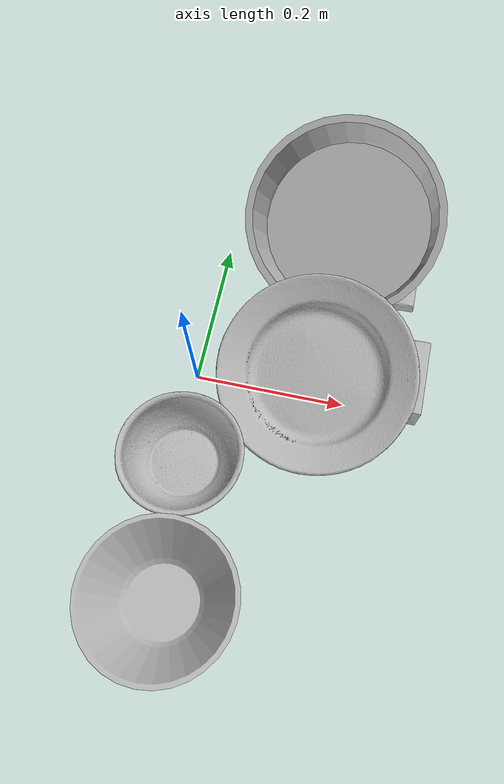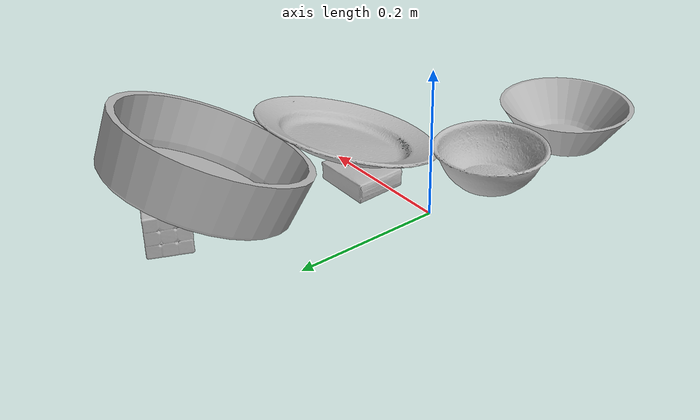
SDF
<sdf version="1.4">
  <world name="default">
    <light name="light1" type="point">
      <pose>0 0 1 0 0 0</pose>
      <diffuse>3 3 3 1</diffuse>
      <specular>3 3 3 1</specular>
    </light>
    <light name="light2" type="point">
      <pose>0 0.5 2 0 0 0</pose>
      <diffuse>1 1 1 1</diffuse>
      <specular>1 1 1 1</specular>
    </light>
    <light name="light3" type="point">
      <pose>0 0.5 2 0 0 0</pose>
      <diffuse>3 3 3 1</diffuse>
      <specular>3 3 3 1</specular>
    </light>
    <scene>
      <ambient>0.7 0.7 0.7</ambient>
    </scene>
    <model name="box1">
      <link name="link_box1">
        <collision name="default">
          <geometry>
            <mesh>
              <uri>model://cracker_box/collision_meshes/collision.obj</uri>
              <scale>0.25 0.25 0.25</scale>
            </mesh>
          </geometry>
          <surface>
            <friction>
              <ode>
                <mu>0.5</mu>
                <mu2>0.5</mu2>
              </ode>
            </friction>
          <contact>
        <ode>
            <max_vel>0</max_vel>
            <min_depth>0.0001</min_depth>
            <kp>1e8</kp>
        </ode>
    </contact></surface>
        </collision>
        <visual name="default">
          <geometry>
            <mesh>
              <uri>model://cracker_box/visual_meshes/visual.dae</uri>
              <scale>0.25 0.25 0.25</scale>
            </mesh>
          </geometry>
        </visual>
        <inertial>
          <mass>0.050503700971603394</mass>
          <pose>0.0002366037224419415 6.358561950037256e-05 -0.0004257383698131889 -0.00031620760376762643 -0.011106489600284392 0.0025467959332018085</pose>
          <inertia>
            <ixx>8.02868e-06</ixx>
            <iyy>1.3256925e-05</iyy>
            <izz>1.8918852e-05</izz>
            <ixy>0</ixy>
            <ixz>0</ixz>
            <iyz>0</iyz>
          </inertia>
        </inertial>
      </link>
      <pose>0.253022700548172 0.18293097615242004 0.009714426472783089 0.055770978321666935 0.011431176232307619 -1.5540900568574658</pose>
    </model>
    <model name="box11">
      <link name="link_box11">
        <collision name="default">
          <geometry>
            <mesh>
              <uri>model://rubiks_cube/collision_meshes/collision.obj</uri>
              <scale>1.0 1.0 1.0</scale>
            </mesh>
          </geometry>
          <surface>
            <friction>
              <ode>
                <mu>0.5</mu>
                <mu2>0.5</mu2>
              </ode>
            </friction>
          <contact>
        <ode>
            <max_vel>0</max_vel>
            <min_depth>0.0001</min_depth>
            <kp>1e8</kp>
        </ode>
    </contact></surface>
        </collision>
        <visual name="default">
          <geometry>
            <mesh>
              <uri>model://rubiks_cube/visual_meshes/visual.dae</uri>
              <scale>1.0 1.0 1.0</scale>
            </mesh>
          </geometry>
        </visual>
        <inertial>
          <mass>0.15071694552898407</mass>
          <pose>2.6721043468569405e-05 5.2569666877388954e-05 -7.264316082000732e-06 -0.05467297119259296 -0.09814009057422186 -0.034453654418704155</pose>
          <inertia>
            <ixx>8.328124e-05</ixx>
            <iyy>8.2892846e-05</iyy>
            <izz>8.397135e-05</izz>
            <ixy>0</ixy>
            <ixz>0</ixz>
            <iyz>0</iyz>
          </inertia>
        </inertial>
      </link>
      <pose>0.14859144389629364 0.2938981056213379 0.028691153973340988 1.4351524385154833e-05 -0.000292692669645425 1.1794949056899473</pose>
    </model>
    <model name="box2">
      <link name="link_box2">
        <collision name="default">
          <geometry>
            <mesh>
              <uri>model://gelatin_box/collision_meshes/collision.obj</uri>
              <scale>1.0 1.0 1.0</scale>
            </mesh>
          </geometry>
          <surface>
            <friction>
              <ode>
                <mu>0.5</mu>
                <mu2>0.5</mu2>
              </ode>
            </friction>
          <contact>
        <ode>
            <max_vel>0</max_vel>
            <min_depth>0.0001</min_depth>
            <kp>1e8</kp>
        </ode>
    </contact></surface>
        </collision>
        <visual name="default">
          <geometry>
            <mesh>
              <uri>model://gelatin_box/visual_meshes/visual.dae</uri>
              <scale>1.0 1.0 1.0</scale>
            </mesh>
          </geometry>
        </visual>
        <inertial>
          <mass>0.24173277616500854</mass>
          <pose>0.00043196187471039593 0.00011156872642459348 -0.0003640321083366871 -0.001050371835386973 -0.004755817297158009 0.016440553881960234</pose>
          <inertia>
            <ixx>0.00017064363</ixx>
            <iyy>0.00012188985</iyy>
            <izz>0.00025975762</izz>
            <ixy>0</ixy>
            <ixz>0</ixz>
            <iyz>0</iyz>
          </inertia>
        </inertial>
      </link>
      <pose>0.11746889352798462 0.0204559788107872 0.015168529935181141 0.005605146811153864 -0.007306319903664183 -1.5735462439530186</pose>
    </model>
    <model name="box21">
      <link name="link_box21">
        <collision name="default">
          <geometry>
            <mesh>
              <uri>model://wood_block/collision_meshes/collision.obj</uri>
              <scale>0.5 0.5 0.5</scale>
            </mesh>
          </geometry>
          <surface>
            <friction>
              <ode>
                <mu>0.5</mu>
                <mu2>0.5</mu2>
              </ode>
            </friction>
          <contact>
        <ode>
            <max_vel>0</max_vel>
            <min_depth>0.0001</min_depth>
            <kp>1e8</kp>
        </ode>
    </contact></surface>
        </collision>
        <visual name="default">
          <geometry>
            <mesh>
              <uri>model://wood_block/visual_meshes/visual.dae</uri>
              <scale>0.5 0.5 0.5</scale>
            </mesh>
          </geometry>
        </visual>
        <inertial>
          <mass>0.16252566874027252</mass>
          <pose>-2.906657982748584e-06 -0.000285404734313488 0.00013204291462898254 -0.05220975528683206 -0.005192696037335319 -0.006861378846526553</pose>
          <inertia>
            <ixx>5.437098e-05</ixx>
            <iyy>0.00017175796</iyy>
            <izz>0.00017111548</izz>
            <ixy>0</ixy>
            <ixz>0</ixz>
            <iyz>0</iyz>
          </inertia>
        </inertial>
      </link>
      <pose>0.27840563654899597 0.0430566668510437 0.022629262879490852 -0.005208492159126527 0.0057187503600182555 -1.5671445912080992</pose>
    </model>
    <model name="box3">
      <link name="link_box3">
        <collision name="default">
          <geometry>
            <mesh>
              <uri>model://pudding_box/collision_meshes/collision.obj</uri>
              <scale>0.5 0.5 0.5</scale>
            </mesh>
          </geometry>
          <surface>
            <friction>
              <ode>
                <mu>0.5</mu>
                <mu2>0.5</mu2>
              </ode>
            </friction>
          <contact>
        <ode>
            <max_vel>0</max_vel>
            <min_depth>0.0001</min_depth>
            <kp>1e8</kp>
        </ode>
    </contact></surface>
        </collision>
        <visual name="default">
          <geometry>
            <mesh>
              <uri>model://pudding_box/visual_meshes/visual.dae</uri>
              <scale>0.5 0.5 0.5</scale>
            </mesh>
          </geometry>
        </visual>
        <inertial>
          <mass>0.05576644837856293</mass>
          <pose>0.00024474109522998333 0.0004033942532259971 -0.0002594413817860186 0.005213101792545572 -0.006603798718575614 0.020079825159656634</pose>
          <inertia>
            <ixx>1.5760277e-05</ixx>
            <iyy>1.0603625e-05</iyy>
            <izz>2.3274164e-05</izz>
            <ixy>0</ixy>
            <ixz>0</ixz>
            <iyz>0</iyz>
          </inertia>
        </inertial>
      </link>
      <pose>0.18318024277687073 -0.06132747232913971 0.010259772650897503 -0.016026331934067176 0.007736380072082423 1.9557512560673311</pose>
    </model>
    <model name="box31">
      <link name="link_box31">
        <collision name="default">
          <geometry>
            <mesh>
              <uri>model://sugar_box/collision_meshes/collision.obj</uri>
              <scale>0.5 0.5 0.5</scale>
            </mesh>
          </geometry>
          <surface>
            <friction>
              <ode>
                <mu>0.5</mu>
                <mu2>0.5</mu2>
              </ode>
            </friction>
          <contact>
        <ode>
            <max_vel>0</max_vel>
            <min_depth>0.0001</min_depth>
            <kp>1e8</kp>
        </ode>
    </contact></surface>
        </collision>
        <visual name="default">
          <geometry>
            <mesh>
              <uri>model://sugar_box/visual_meshes/visual.dae</uri>
              <scale>0.5 0.5 0.5</scale>
            </mesh>
          </geometry>
        </visual>
        <inertial>
          <mass>0.1100529357790947</mass>
          <pose>0.0005171863595023751 1.924554817378521e-05 -0.00018182402709499002 -0.00040462641680988955 0.001050663522315131 0.0026153787888612426</pose>
          <inertia>
            <ixx>2.2923945e-05</ixx>
            <iyy>7.409492e-05</iyy>
            <izz>8.870046e-05</izz>
            <ixy>0</ixy>
            <ixz>0</ixz>
            <iyz>0</iyz>
          </inertia>
        </inertial>
      </link>
      <pose>0.17151324450969696 0.23094730079174042 0.011399298906326294 0.0007752930225562173 -0.02343325702790086 0.8316687195966056</pose>
    </model>
    <model name="plate1">
      <link name="link_plate1">
        <collision name="default">
          <geometry>
            <mesh>
              <uri>model://pan_tefal/collision_meshes/collision.obj</uri>
              <scale>1.0 1.0 1.0</scale>
            </mesh>
          </geometry>
          <surface>
            <friction>
              <ode>
                <mu>0.5</mu>
                <mu2>0.5</mu2>
              </ode>
            </friction>
          <contact>
        <ode>
            <max_vel>0</max_vel>
            <min_depth>0.0001</min_depth>
            <kp>1e8</kp>
        </ode>
    </contact></surface>
        </collision>
        <visual name="default">
          <geometry>
            <mesh>
              <uri>model://pan_tefal/visual_meshes/visual.dae</uri>
              <scale>1.0 1.0 1.0</scale>
            </mesh>
          </geometry>
        </visual>
        <inertial>
          <mass>1.207520604133606</mass>
          <pose>-0.00018002177239395678 3.2792409911053255e-05 -0.00851493701338768 0.0008190288495961148 -0.0003301407263612178 -0.3318541272495768</pose>
          <inertia>
            <ixx>0.008335457</ixx>
            <iyy>0.008389196</iyy>
            <izz>0.015343971</izz>
            <ixy>0</ixy>
            <ixz>0</ixz>
            <iyz>0</iyz>
          </inertia>
        </inertial>
      </link>
      <pose>0.15852691233158112 0.2310555875301361 0.08544494956731796 -0.42077483746410443 -0.1618922409334605 2.603985134721194</pose>
    </model>
    <model name="bowl1">
      <link name="link_bowl1">
        <collision name="default">
          <geometry>
            <mesh>
              <uri>model://bowl/collision_meshes/collision.obj</uri>
              <scale>1.0 1.0 1.0</scale>
            </mesh>
          </geometry>
          <surface>
            <friction>
              <ode>
                <mu>0.5</mu>
                <mu2>0.5</mu2>
              </ode>
            </friction>
          <contact>
        <ode>
            <max_vel>0</max_vel>
            <min_depth>0.0001</min_depth>
            <kp>1e8</kp>
        </ode>
    </contact></surface>
        </collision>
        <visual name="default">
          <geometry>
            <mesh>
              <uri>model://bowl/visual_meshes/visual.dae</uri>
              <scale>1.0 1.0 1.0</scale>
            </mesh>
          </geometry>
        </visual>
        <inertial>
          <mass>0.09256309270858765</mass>
          <pose>0.00020445158588699996 -0.001030202372930944 -0.0008042642730288208 -0.015764073075752352 0.01454679669645375 0.7140412125775129</pose>
          <inertia>
            <ixx>0.00021262471</ixx>
            <iyy>0.00020787389</iyy>
            <izz>0.00035770793</izz>
            <ixy>0</ixy>
            <ixz>0</ixz>
            <iyz>0</iyz>
          </inertia>
        </inertial>
      </link>
      <pose>0.011201197281479836 -0.12047363072633743 0.02778005413711071 4.248300187909672e-06 -3.8146496081439806e-06 -0.17217959342536487</pose>
    </model>
    <model name="plate2">
      <link name="link_plate2">
        <collision name="default">
          <geometry>
            <mesh>
              <uri>model://plate/collision_meshes/collision.obj</uri>
              <scale>1.0 1.0 1.0</scale>
            </mesh>
          </geometry>
          <surface>
            <friction>
              <ode>
                <mu>0.5</mu>
                <mu2>0.5</mu2>
              </ode>
            </friction>
          <contact>
        <ode>
            <max_vel>0</max_vel>
            <min_depth>0.0001</min_depth>
            <kp>1e8</kp>
        </ode>
    </contact></surface>
        </collision>
        <visual name="default">
          <geometry>
            <mesh>
              <uri>model://plate/visual_meshes/visual.dae</uri>
              <scale>1.0 1.0 1.0</scale>
            </mesh>
          </geometry>
        </visual>
        <inertial>
          <mass>0.22150008380413055</mass>
          <pose>-0.0006044640904292464 0.0002782581141218543 -0.0010561984963715076 0.0022187839711676756 -0.00322547471274247 0.4526095389577293</pose>
          <inertia>
            <ixx>0.0010361817</ixx>
            <iyy>0.0010262709</iyy>
            <izz>0.0020266173</izz>
            <ixy>0</ixy>
            <ixz>0</ixz>
            <iyz>0</iyz>
          </inertia>
        </inertial>
      </link>
      <pose>0.15977533161640167 0.01561745349317789 0.05479814484715462 -0.20682400959646463 -0.20033481208767653 2.2759645391584975</pose>
    </model>
    <model name="bowl2">
      <link name="link_bowl2">
        <collision name="default">
          <geometry>
            <mesh>
              <uri>model://bowl_a/collision_meshes/collision.obj</uri>
              <scale>1.0 1.0 1.0</scale>
            </mesh>
          </geometry>
          <surface>
            <friction>
              <ode>
                <mu>0.5</mu>
                <mu2>0.5</mu2>
              </ode>
            </friction>
          <contact>
        <ode>
            <max_vel>0</max_vel>
            <min_depth>0.0001</min_depth>
            <kp>1e8</kp>
        </ode>
    </contact></surface>
        </collision>
        <visual name="default">
          <geometry>
            <mesh>
              <uri>model://bowl_a/visual_meshes/visual.dae</uri>
              <scale>1.0 1.0 1.0</scale>
            </mesh>
          </geometry>
        </visual>
        <inertial>
          <mass>0.4869906008243561</mass>
          <pose>0.0002786735713016242 4.731232547783293e-05 -0.001376529224216938 -0.0009805388639875933 -0.0010938169956893674 -0.19123322132810686</pose>
          <inertia>
            <ixx>0.0013864844</ixx>
            <iyy>0.0013949967</iyy>
            <izz>0.0024659163</izz>
            <ixy>0</ixy>
            <ixz>0</ixz>
            <iyz>0</iyz>
          </inertia>
        </inertial>
      </link>
      <pose>0.029055438935756683 -0.2958261966705322 0.030383003875613213 -2.5341761455141905e-09 1.3089134599406222e-08 2.0060491840581114</pose>
    </model>
  <physics type="ode">
      <max_contacts>50</max_contacts>
      <ode>
        <solver>
          <type>quick</type>
          <iters>75</iters>
        </solver>
        <constraints>
          <contact_max_correcting_vel>0</contact_max_correcting_vel>
          <contact_surface_layer>0</contact_surface_layer>
        </constraints>
      </ode>
    </physics></world>
</sdf>
